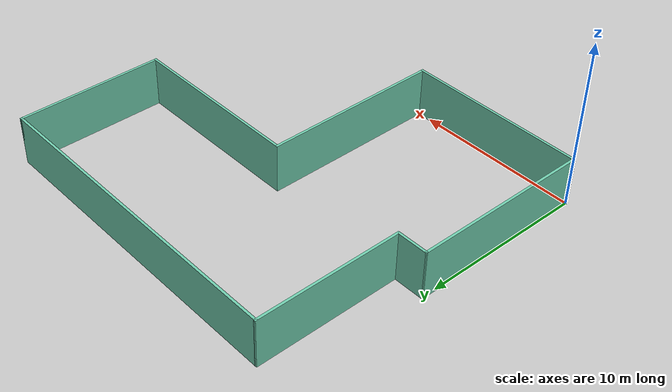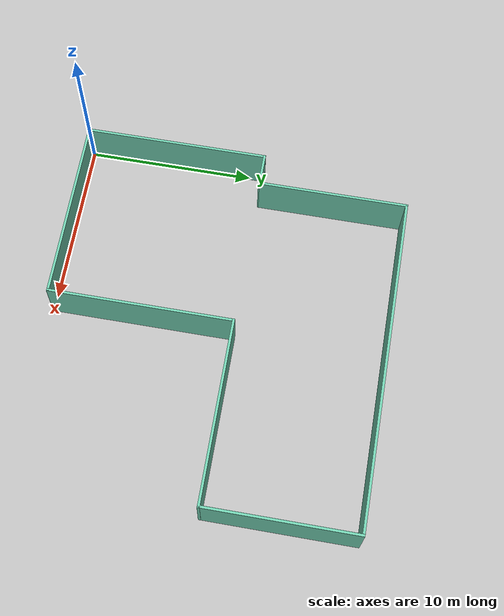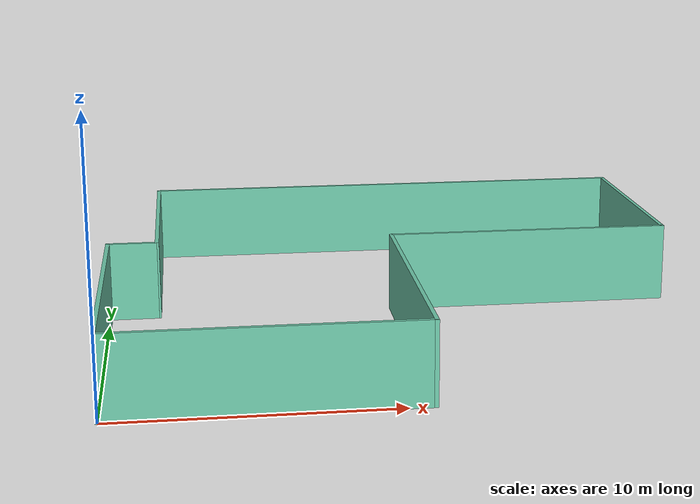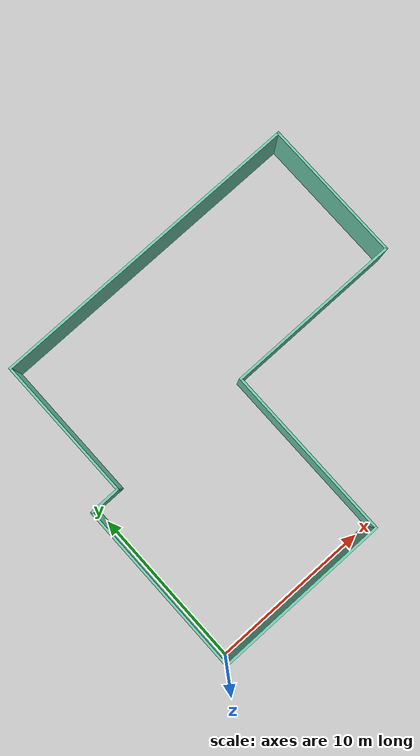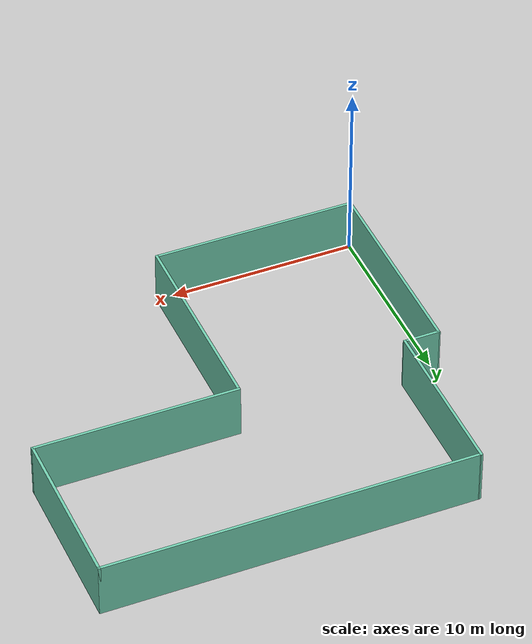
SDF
<?xml version='1.0'?>
<sdf version='1.7'>
  <model name='flight_arena'>
    <pose>10.8499 9.85202 0 0 -0 0</pose>
    <link name='Wall_16'>
      <collision name='Wall_16_Collision'>
        <geometry>
          <box>
            <size>11 0.15 3</size>
          </box>
        </geometry>
        <pose>0 0 1.5 0 -0 0</pose>
      </collision>
      <visual name='Wall_16_Visual'>
        <pose>0 0 1.5 0 -0 0</pose>
        <geometry>
          <box>
            <size>11 0.15 3</size>
          </box>
        </geometry>
        <material>
          <script>
            <uri>file://media/materials/scripts/gazebo.material</uri>
            <name>Gazebo/Grey</name>
          </script>
          <ambient>0.435294 0.796078 0.67451 1</ambient>
        </material>
        <meta>
          <layer>0</layer>
        </meta>
      </visual>
      <pose>-10.8499 -4.42702 0 0 -0 1.5708</pose>
    </link>
    <link name='Wall_19'>
      <collision name='Wall_19_Collision'>
        <geometry>
          <box>
            <size>2 0.15 3</size>
          </box>
        </geometry>
        <pose>0 0 1.5 0 -0 0</pose>
      </collision>
      <visual name='Wall_19_Visual'>
        <pose>0 0 1.5 0 -0 0</pose>
        <geometry>
          <box>
            <size>2 0.15 3</size>
          </box>
        </geometry>
        <material>
          <script>
            <uri>file://media/materials/scripts/gazebo.material</uri>
            <name>Gazebo/Grey</name>
          </script>
          <ambient>0.435294 0.796078 0.67451 1</ambient>
        </material>
        <meta>
          <layer>0</layer>
        </meta>
      </visual>
      <pose>-9.92492 0.999984 0 0 -0 0.002162</pose>
    </link>
    <link name='Wall_21'>
      <collision name='Wall_21_Collision'>
        <geometry>
          <box>
            <size>9 0.15 3</size>
          </box>
        </geometry>
        <pose>0 0 1.5 0 -0 0</pose>
      </collision>
      <visual name='Wall_21_Visual'>
        <pose>0 0 1.5 0 -0 0</pose>
        <geometry>
          <box>
            <size>9 0.15 3</size>
          </box>
        </geometry>
        <material>
          <script>
            <uri>file://media/materials/scripts/gazebo.material</uri>
            <name>Gazebo/Grey</name>
          </script>
          <ambient>0.435294 0.796078 0.67451 1</ambient>
        </material>
        <meta>
          <layer>0</layer>
        </meta>
      </visual>
      <pose>-9.00192 5.42698 0 0 -0 1.57125</pose>
    </link>
    <link name='Wall_24'>
      <collision name='Wall_24_Collision'>
        <geometry>
          <box>
            <size>20 0.15 3</size>
          </box>
        </geometry>
        <pose>0 0 1.5 0 -0 0</pose>
      </collision>
      <visual name='Wall_24_Visual'>
        <pose>0 0 1.5 0 -0 0</pose>
        <geometry>
          <box>
            <size>20 0.15 3</size>
          </box>
        </geometry>
        <material>
          <script>
            <uri>file://media/materials/scripts/gazebo.material</uri>
            <name>Gazebo/Grey</name>
          </script>
          <ambient>0.435294 0.796078 0.67451 1</ambient>
        </material>
        <meta>
          <layer>0</layer>
        </meta>
      </visual>
      <pose>0.921158 9.85199 0 0 -0 0</pose>
    </link>
    <link name='Wall_26'>
      <collision name='Wall_26_Collision'>
        <geometry>
          <box>
            <size>9 0.15 3</size>
          </box>
        </geometry>
        <pose>0 0 1.5 0 -0 0</pose>
      </collision>
      <visual name='Wall_26_Visual'>
        <pose>0 0 1.5 0 -0 0</pose>
        <geometry>
          <box>
            <size>9 0.15 3</size>
          </box>
        </geometry>
        <material>
          <script>
            <uri>file://media/materials/scripts/gazebo.material</uri>
            <name>Gazebo/Grey</name>
          </script>
          <ambient>0.435294 0.796078 0.67451 1</ambient>
        </material>
        <meta>
          <layer>0</layer>
        </meta>
      </visual>
      <pose>10.8462 5.42699 0 0 -0 -1.5708</pose>
    </link>
    <link name='Wall_30'>
      <collision name='Wall_30_Collision'>
        <geometry>
          <box>
            <size>11 0.15 3</size>
          </box>
        </geometry>
        <pose>0 0 1.5 0 -0 0</pose>
      </collision>
      <visual name='Wall_30_Visual'>
        <pose>0 0 1.5 0 -0 0</pose>
        <geometry>
          <box>
            <size>11 0.15 3</size>
          </box>
        </geometry>
        <material>
          <script>
            <uri>file://media/materials/scripts/gazebo.material</uri>
            <name>Gazebo/Grey</name>
          </script>
          <ambient>0.435294 0.796078 0.67451 1</ambient>
        </material>
        <meta>
          <layer>0</layer>
        </meta>
      </visual>
      <pose>-5.42492 -9.85202 0 0 -0 0</pose>
    </link>
    <link name='Wall_32'>
      <collision name='Wall_32_Collision'>
        <geometry>
          <box>
            <size>11 0.15 3</size>
          </box>
        </geometry>
        <pose>0 0 1.5 0 -0 0</pose>
      </collision>
      <visual name='Wall_32_Visual'>
        <pose>0 0 1.5 0 -0 0</pose>
        <geometry>
          <box>
            <size>11 0.15 3</size>
          </box>
        </geometry>
        <material>
          <script>
            <uri>file://media/materials/scripts/gazebo.material</uri>
            <name>Gazebo/Grey</name>
          </script>
          <ambient>0.435294 0.796078 0.67451 1</ambient>
        </material>
        <meta>
          <layer>0</layer>
        </meta>
      </visual>
      <pose>8e-05 -4.42702 0 0 -0 1.5708</pose>
    </link>
    <link name='Wall_34'>
      <collision name='Wall_34_Collision'>
        <geometry>
          <box>
            <size>11 0.15 3</size>
          </box>
        </geometry>
        <pose>0 0 1.5 0 -0 0</pose>
      </collision>
      <visual name='Wall_34_Visual'>
        <pose>0 0 1.5 0 -0 0</pose>
        <geometry>
          <box>
            <size>11 0.15 3</size>
          </box>
        </geometry>
        <material>
          <script>
            <uri>file://media/materials/scripts/gazebo.material</uri>
            <name>Gazebo/Grey</name>
          </script>
          <ambient>0.435294 0.796078 0.67451 1</ambient>
        </material>
        <meta>
          <layer>0</layer>
        </meta>
      </visual>
      <pose>5.42508 0.997984 0 0 -0 0</pose>
    </link>
    <static>1</static>
  </model>
</sdf>
